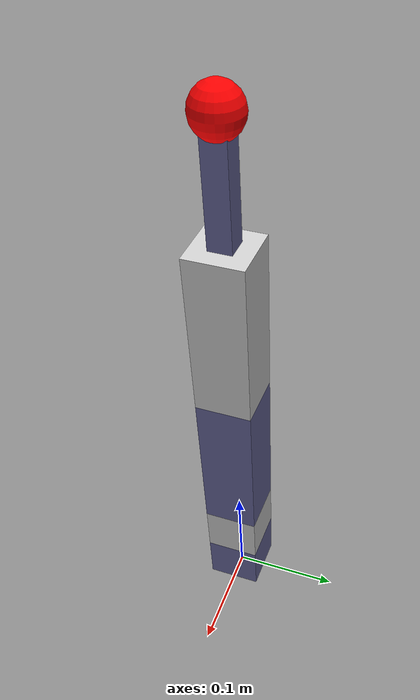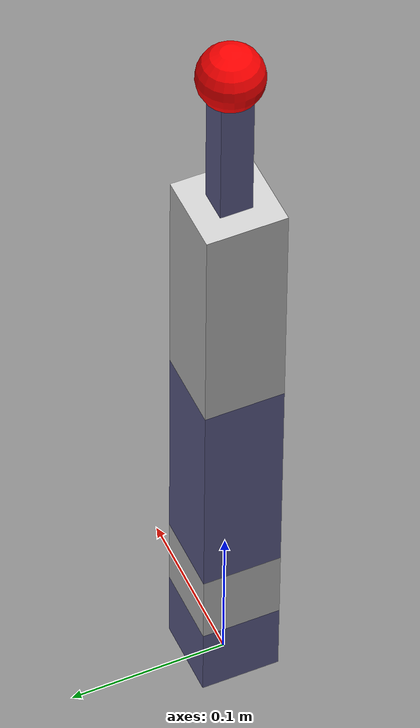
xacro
<robot name="arm_robot" xmlns:xacro="http://ros.org/wiki/xacro">
  <material name="red">
    <color rgba="1.0 0.0 0.0 1.0"/>
  </material>
  <material name="gray">
    <color rgba="0.4 0.4 0.6 1.0"/>
  </material>
  <material name="light_gray">
    <color rgba="0.8 0.8 0.8 1.0"/>
  </material>

  <xacro:macro name="arm4d_macro" params="l1 l2 l3 l4 l5">
    <link name="base_link"/>

    <joint name="body_joint" type="fixed">
      <parent link="base_link"/>
      <child link="body_link"/>
    </joint>
    <link name="body_link">
      <visual>
        <origin rpy="0 0 0" xyz="0 0 ${l1/2}"/>
        <geometry>
          <box size="0.05 0.05 ${l1}"/>
        </geometry>
        <material name="gray"/>
      </visual>
    </link>

    <joint name="arm1_joint" type="revolute">
      <parent link="body_link"/>
      <child link="arm1_link"/>
      <origin rpy="0 0 0" xyz="0 0 ${l1}"/>
      <axis xyz="0 0 1"/>
      <limit effort="30" lower="-2.0" upper="2.0" velocity="1.5"/>
    </joint>
    <link name="arm1_link">
      <visual>
        <origin rpy="0 0 0" xyz="0 0 ${l2/2}"/>
        <geometry>
          <box size="0.05 0.05 ${l2}"/>
        </geometry>
        <material name="light_gray"/>
      </visual>
    </link>

    <joint name="arm2_joint" type="revolute">
      <parent link="arm1_link"/>
      <child link="arm2_link"/>
      <origin rpy="0 0 0" xyz="0 0 ${l2}"/>
      <axis xyz="0 1 0"/>
      <limit effort="30" lower="-2.0" upper="2.0" velocity="1.5"/>
    </joint>
    <link name="arm2_link">
      <visual>
        <origin rpy="0 0 0" xyz="0 0 ${l3/2}"/>
        <geometry>
          <box size="0.05 0.05 ${l3}"/>
        </geometry>
        <material name="gray"/>
      </visual>
    </link>

    <joint name="arm3_joint" type="revolute">
      <parent link="arm2_link"/>
      <child link="arm3_link"/>
      <origin rpy="0 0 0" xyz="0 0 ${l3}"/>
      <axis xyz="0 1 0"/>
      <limit effort="30" lower="-2.0" upper="2.0" velocity="1.5"/>
    </joint>
    <link name="arm3_link">
      <visual>
        <origin rpy="0 0 0" xyz="0 0 ${l4/2}"/>
        <geometry>
          <box size="0.05 0.05 ${l4}"/>
        </geometry>
        <material name="light_gray"/>
      </visual>
    </link>

    <joint name="arm4_joint" type="revolute">
      <parent link="arm3_link"/>
      <child link="arm4_link"/>
      <origin rpy="0 0 0" xyz="0 0 ${l4}"/>
      <axis xyz="0 1 0"/>
      <limit effort="30" lower="-2.0" upper="2.0" velocity="1.5"/>
    </joint>
    <link name="arm4_link">
      <visual>
        <origin rpy="0 0 0" xyz="0 0 ${l5/2}"/>
        <geometry>
          <box size="0.02 0.02 ${l5}"/>
        </geometry>
        <material name="gray"/>
      </visual>
    </link>

    <joint name="target_joint" type="fixed">
      <parent link="arm4_link"/>
      <child link="target_link"/>
      <origin rpy="0 0 0" xyz="0 0 ${l5}"/>
    </joint>
    <link name="target_link">
      <visual>
        <geometry>
          <sphere radius="0.02"/>
        </geometry>
        <material name="red"/>
      </visual>
    </link>

  </xacro:macro>

  <xacro:arm4d_macro l1="0.05" l2="0.05" l3="0.15" l4="0.15" l5="0.1"/>
</robot>
